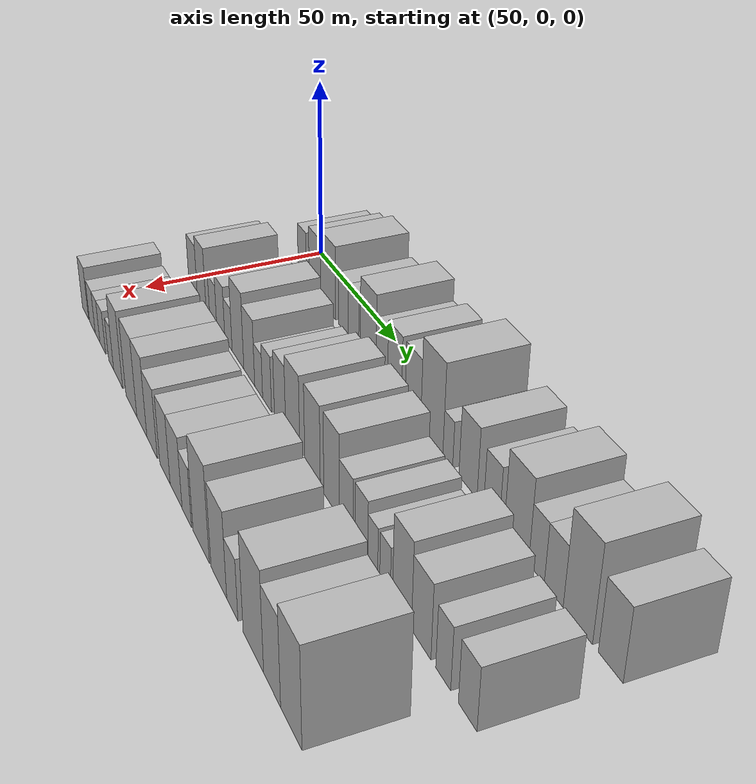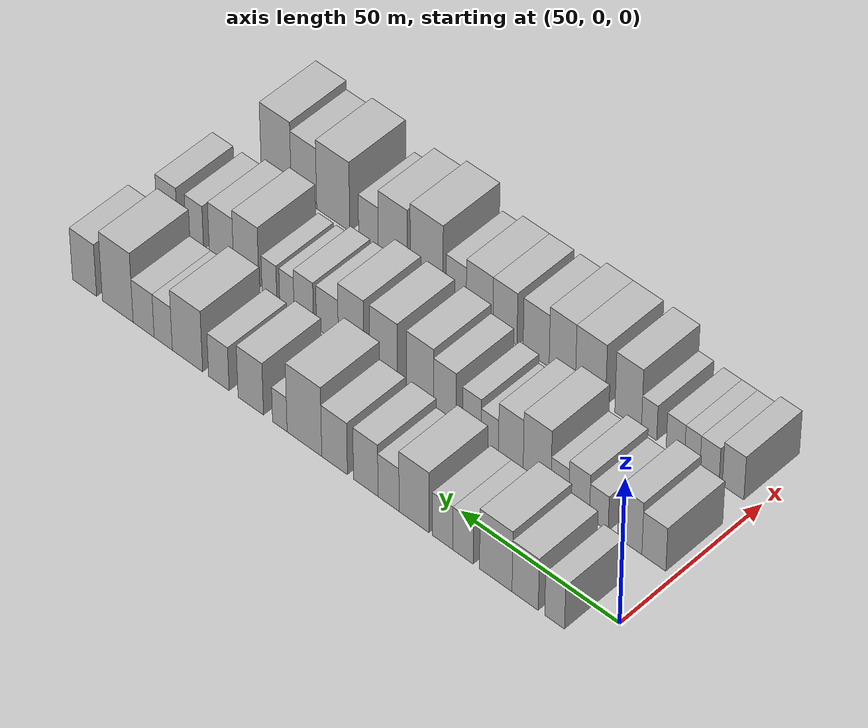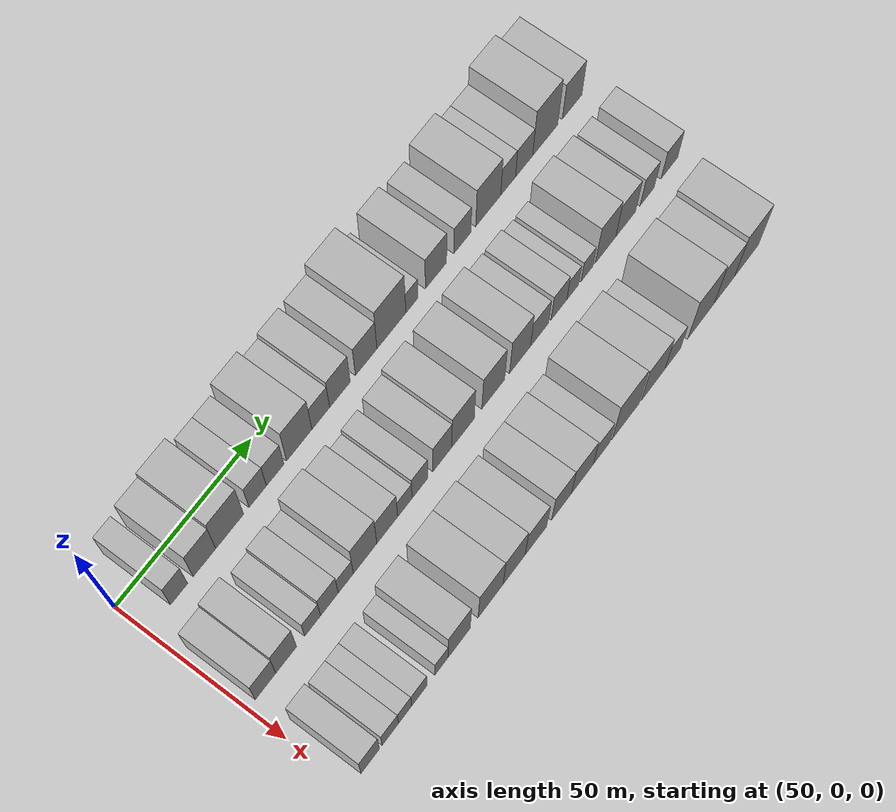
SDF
<sdf version="1.6">
 <world name="default">
  <model name="building_37">
   <static>1</static>
   <pose>50.0000 11.1801 0 0.000000 0.000000 0.000000</pose>
   <link name="link">
    <pose>0 0 7.50 0 0 0</pose>
    <collision name="collision"><geometry><box><size>20.0000 6.1879 15.0000</size></box></geometry></collision>
    <visual name="visual">
     <cast_shadows>0</cast_shadows>
     <geometry><box><size>20.0000 6.1879 15.0000</size></box></geometry>
     <material>
      <script>
       <uri>model://HANNAS_wall/materials/scripts</uri>
       <uri>model://HANNAS_wall/materials/textures</uri>
       <name>vrc/HANNAS_wall</name>
      </script>
     </material>
    </visual>
   </link>
  </model>
  <model name="building_38">
   <static>1</static>
   <pose>50.0000 20.3887 0 0.000000 0.000000 0.000000</pose>
   <link name="link">
    <pose>0 0 9.00 0 0 0</pose>
    <collision name="collision"><geometry><box><size>20.0000 8.2294 18.0000</size></box></geometry></collision>
    <visual name="visual">
     <cast_shadows>0</cast_shadows>
     <geometry><box><size>20.0000 8.2294 18.0000</size></box></geometry>
     <material>
      <script>
       <uri>model://HANNAS_wall/materials/scripts</uri>
       <uri>model://HANNAS_wall/materials/textures</uri>
       <name>vrc/HANNAS_wall</name>
      </script>
     </material>
    </visual>
   </link>
  </model>
  <model name="building_39">
   <static>1</static>
   <pose>50.0000 29.6329 0 0.000000 0.000000 0.000000</pose>
   <link name="link">
    <pose>0 0 10.50 0 0 0</pose>
    <collision name="collision"><geometry><box><size>20.0000 10.2591 21.0000</size></box></geometry></collision>
    <visual name="visual">
     <cast_shadows>0</cast_shadows>
     <geometry><box><size>20.0000 10.2591 21.0000</size></box></geometry>
     <material>
      <script>
       <uri>model://HANNAS_wall/materials/scripts</uri>
       <uri>model://HANNAS_wall/materials/textures</uri>
       <name>vrc/HANNAS_wall</name>
      </script>
     </material>
    </visual>
   </link>
  </model>
  <model name="building_40">
   <static>1</static>
   <pose>50.0000 40.0104 0 0.000000 0.000000 0.000000</pose>
   <link name="link">
    <pose>0 0 7.50 0 0 0</pose>
    <collision name="collision"><geometry><box><size>20.0000 6.4958 15.0000</size></box></geometry></collision>
    <visual name="visual">
     <cast_shadows>0</cast_shadows>
     <geometry><box><size>20.0000 6.4958 15.0000</size></box></geometry>
     <material>
      <script>
       <uri>model://HANNAS_wall/materials/scripts</uri>
       <uri>model://HANNAS_wall/materials/textures</uri>
       <name>vrc/HANNAS_wall</name>
      </script>
     </material>
    </visual>
   </link>
  </model>
  <model name="building_41">
   <static>1</static>
   <pose>50.0000 46.5417 0 0.000000 0.000000 0.000000</pose>
   <link name="link">
    <pose>0 0 7.50 0 0 0</pose>
    <collision name="collision"><geometry><box><size>20.0000 6.5669 15.0000</size></box></geometry></collision>
    <visual name="visual">
     <cast_shadows>0</cast_shadows>
     <geometry><box><size>20.0000 6.5669 15.0000</size></box></geometry>
     <material>
      <script>
       <uri>model://HANNAS_wall/materials/scripts</uri>
       <uri>model://HANNAS_wall/materials/textures</uri>
       <name>vrc/HANNAS_wall</name>
      </script>
     </material>
    </visual>
   </link>
  </model>
  <model name="building_42">
   <static>1</static>
   <pose>50.0000 55.6365 0 0.000000 0.000000 0.000000</pose>
   <link name="link">
    <pose>0 0 10.50 0 0 0</pose>
    <collision name="collision"><geometry><box><size>20.0000 9.6227 21.0000</size></box></geometry></collision>
    <visual name="visual">
     <cast_shadows>0</cast_shadows>
     <geometry><box><size>20.0000 9.6227 21.0000</size></box></geometry>
     <material>
      <script>
       <uri>model://HANNAS_wall/materials/scripts</uri>
       <uri>model://HANNAS_wall/materials/textures</uri>
       <name>vrc/HANNAS_wall</name>
      </script>
     </material>
    </visual>
   </link>
  </model>
  <model name="building_43">
   <static>1</static>
   <pose>50.0000 63.8564 0 0.000000 0.000000 0.000000</pose>
   <link name="link">
    <pose>0 0 7.50 0 0 0</pose>
    <collision name="collision"><geometry><box><size>20.0000 6.8171 15.0000</size></box></geometry></collision>
    <visual name="visual">
     <cast_shadows>0</cast_shadows>
     <geometry><box><size>20.0000 6.8171 15.0000</size></box></geometry>
     <material>
      <script>
       <uri>model://HANNAS_wall/materials/scripts</uri>
       <uri>model://HANNAS_wall/materials/textures</uri>
       <name>vrc/HANNAS_wall</name>
      </script>
     </material>
    </visual>
   </link>
  </model>
  <model name="building_44">
   <static>1</static>
   <pose>50.0000 71.2463 0 0.000000 0.000000 0.000000</pose>
   <link name="link">
    <pose>0 0 9.00 0 0 0</pose>
    <collision name="collision"><geometry><box><size>20.0000 7.9626 18.0000</size></box></geometry></collision>
    <visual name="visual">
     <cast_shadows>0</cast_shadows>
     <geometry><box><size>20.0000 7.9626 18.0000</size></box></geometry>
     <material>
      <script>
       <uri>model://HANNAS_wall/materials/scripts</uri>
       <uri>model://HANNAS_wall/materials/textures</uri>
       <name>vrc/HANNAS_wall</name>
      </script>
     </material>
    </visual>
   </link>
  </model>
  <model name="building_45">
   <static>1</static>
   <pose>50.0000 81.4256 0 0.000000 0.000000 0.000000</pose>
   <link name="link">
    <pose>0 0 9.00 0 0 0</pose>
    <collision name="collision"><geometry><box><size>20.0000 8.3960 18.0000</size></box></geometry></collision>
    <visual name="visual">
     <cast_shadows>0</cast_shadows>
     <geometry><box><size>20.0000 8.3960 18.0000</size></box></geometry>
     <material>
      <script>
       <uri>model://HANNAS_wall/materials/scripts</uri>
       <uri>model://HANNAS_wall/materials/textures</uri>
       <name>vrc/HANNAS_wall</name>
      </script>
     </material>
    </visual>
   </link>
  </model>
  <model name="building_46">
   <static>1</static>
   <pose>50.0000 91.3448 0 0.000000 0.000000 0.000000</pose>
   <link name="link">
    <pose>0 0 12.00 0 0 0</pose>
    <collision name="collision"><geometry><box><size>20.0000 11.4425 24.0000</size></box></geometry></collision>
    <visual name="visual">
     <cast_shadows>0</cast_shadows>
     <geometry><box><size>20.0000 11.4425 24.0000</size></box></geometry>
     <material>
      <script>
       <uri>model://HANNAS_wall/materials/scripts</uri>
       <uri>model://HANNAS_wall/materials/textures</uri>
       <name>vrc/HANNAS_wall</name>
      </script>
     </material>
    </visual>
   </link>
  </model>
  <model name="building_47">
   <static>1</static>
   <pose>50.0000 99.4876 0 0.000000 0.000000 0.000000</pose>
   <link name="link">
    <pose>0 0 6.00 0 0 0</pose>
    <collision name="collision"><geometry><box><size>20.0000 4.8430 12.0000</size></box></geometry></collision>
    <visual name="visual">
     <cast_shadows>0</cast_shadows>
     <geometry><box><size>20.0000 4.8430 12.0000</size></box></geometry>
     <material>
      <script>
       <uri>model://HANNAS_wall/materials/scripts</uri>
       <uri>model://HANNAS_wall/materials/textures</uri>
       <name>vrc/HANNAS_wall</name>
      </script>
     </material>
    </visual>
   </link>
  </model>
  <model name="building_48">
   <static>1</static>
   <pose>50.0000 109.1554 0 0.000000 0.000000 0.000000</pose>
   <link name="link">
    <pose>0 0 9.00 0 0 0</pose>
    <collision name="collision"><geometry><box><size>20.0000 8.4926 18.0000</size></box></geometry></collision>
    <visual name="visual">
     <cast_shadows>0</cast_shadows>
     <geometry><box><size>20.0000 8.4926 18.0000</size></box></geometry>
     <material>
      <script>
       <uri>model://HANNAS_wall/materials/scripts</uri>
       <uri>model://HANNAS_wall/materials/textures</uri>
       <name>vrc/HANNAS_wall</name>
      </script>
     </material>
    </visual>
   </link>
  </model>
  <model name="building_49">
   <static>1</static>
   <pose>50.0000 119.8619 0 0.000000 0.000000 0.000000</pose>
   <link name="link">
    <pose>0 0 7.50 0 0 0</pose>
    <collision name="collision"><geometry><box><size>20.0000 6.9204 15.0000</size></box></geometry></collision>
    <visual name="visual">
     <cast_shadows>0</cast_shadows>
     <geometry><box><size>20.0000 6.9204 15.0000</size></box></geometry>
     <material>
      <script>
       <uri>model://HANNAS_wall/materials/scripts</uri>
       <uri>model://HANNAS_wall/materials/textures</uri>
       <name>vrc/HANNAS_wall</name>
      </script>
     </material>
    </visual>
   </link>
  </model>
  <model name="building_50">
   <static>1</static>
   <pose>50.0000 130.4726 0 0.000000 0.000000 0.000000</pose>
   <link name="link">
    <pose>0 0 10.50 0 0 0</pose>
    <collision name="collision"><geometry><box><size>20.0000 10.3011 21.0000</size></box></geometry></collision>
    <visual name="visual">
     <cast_shadows>0</cast_shadows>
     <geometry><box><size>20.0000 10.3011 21.0000</size></box></geometry>
     <material>
      <script>
       <uri>model://HANNAS_wall/materials/scripts</uri>
       <uri>model://HANNAS_wall/materials/textures</uri>
       <name>vrc/HANNAS_wall</name>
      </script>
     </material>
    </visual>
   </link>
  </model>
  <model name="building_51">
   <static>1</static>
   <pose>50.0000 138.7285 0 0.000000 0.000000 0.000000</pose>
   <link name="link">
    <pose>0 0 7.50 0 0 0</pose>
    <collision name="collision"><geometry><box><size>20.0000 6.2106 15.0000</size></box></geometry></collision>
    <visual name="visual">
     <cast_shadows>0</cast_shadows>
     <geometry><box><size>20.0000 6.2106 15.0000</size></box></geometry>
     <material>
      <script>
       <uri>model://HANNAS_wall/materials/scripts</uri>
       <uri>model://HANNAS_wall/materials/textures</uri>
       <name>vrc/HANNAS_wall</name>
      </script>
     </material>
    </visual>
   </link>
  </model>
  <model name="building_52">
   <static>1</static>
   <pose>50.0000 145.4337 0 0.000000 0.000000 0.000000</pose>
   <link name="link">
    <pose>0 0 7.50 0 0 0</pose>
    <collision name="collision"><geometry><box><size>20.0000 7.1999 15.0000</size></box></geometry></collision>
    <visual name="visual">
     <cast_shadows>0</cast_shadows>
     <geometry><box><size>20.0000 7.1999 15.0000</size></box></geometry>
     <material>
      <script>
       <uri>model://HANNAS_wall/materials/scripts</uri>
       <uri>model://HANNAS_wall/materials/textures</uri>
       <name>vrc/HANNAS_wall</name>
      </script>
     </material>
    </visual>
   </link>
  </model>
  <model name="building_53">
   <static>1</static>
   <pose>50.0000 154.3404 0 0.000000 0.000000 0.000000</pose>
   <link name="link">
    <pose>0 0 12.00 0 0 0</pose>
    <collision name="collision"><geometry><box><size>20.0000 10.6135 24.0000</size></box></geometry></collision>
    <visual name="visual">
     <cast_shadows>0</cast_shadows>
     <geometry><box><size>20.0000 10.6135 24.0000</size></box></geometry>
     <material>
      <script>
       <uri>model://HANNAS_wall/materials/scripts</uri>
       <uri>model://HANNAS_wall/materials/textures</uri>
       <name>vrc/HANNAS_wall</name>
      </script>
     </material>
    </visual>
   </link>
  </model>
  <model name="building_54">
   <static>1</static>
   <pose>50.0000 165.8436 0 0.000000 0.000000 0.000000</pose>
   <link name="link">
    <pose>0 0 9.00 0 0 0</pose>
    <collision name="collision"><geometry><box><size>20.0000 8.3927 18.0000</size></box></geometry></collision>
    <visual name="visual">
     <cast_shadows>0</cast_shadows>
     <geometry><box><size>20.0000 8.3927 18.0000</size></box></geometry>
     <material>
      <script>
       <uri>model://HANNAS_wall/materials/scripts</uri>
       <uri>model://HANNAS_wall/materials/textures</uri>
       <name>vrc/HANNAS_wall</name>
      </script>
     </material>
    </visual>
   </link>
  </model>
  <model name="building_110">
   <static>1</static>
   <pose>79.0000 6.4554 0 0.000000 0.000000 0.000000</pose>
   <link name="link">
    <pose>0 0 7.50 0 0 0</pose>
    <collision name="collision"><geometry><box><size>20.0000 7.4567 15.0000</size></box></geometry></collision>
    <visual name="visual">
     <cast_shadows>0</cast_shadows>
     <geometry><box><size>20.0000 7.4567 15.0000</size></box></geometry>
     <material>
      <script>
       <uri>model://HANNAS_wall/materials/scripts</uri>
       <uri>model://HANNAS_wall/materials/textures</uri>
       <name>vrc/HANNAS_wall</name>
      </script>
     </material>
    </visual>
   </link>
  </model>
  <model name="building_111">
   <static>1</static>
   <pose>79.0000 13.9519 0 0.000000 0.000000 0.000000</pose>
   <link name="link">
    <pose>0 0 9.00 0 0 0</pose>
    <collision name="collision"><geometry><box><size>20.0000 7.5363 18.0000</size></box></geometry></collision>
    <visual name="visual">
     <cast_shadows>0</cast_shadows>
     <geometry><box><size>20.0000 7.5363 18.0000</size></box></geometry>
     <material>
      <script>
       <uri>model://HANNAS_wall/materials/scripts</uri>
       <uri>model://HANNAS_wall/materials/textures</uri>
       <name>vrc/HANNAS_wall</name>
      </script>
     </material>
    </visual>
   </link>
  </model>
  <model name="building_112">
   <static>1</static>
   <pose>79.0000 23.6591 0 0.000000 0.000000 0.000000</pose>
   <link name="link">
    <pose>0 0 6.00 0 0 0</pose>
    <collision name="collision"><geometry><box><size>20.0000 5.8781 12.0000</size></box></geometry></collision>
    <visual name="visual">
     <cast_shadows>0</cast_shadows>
     <geometry><box><size>20.0000 5.8781 12.0000</size></box></geometry>
     <material>
      <script>
       <uri>model://HANNAS_wall/materials/scripts</uri>
       <uri>model://HANNAS_wall/materials/textures</uri>
       <name>vrc/HANNAS_wall</name>
      </script>
     </material>
    </visual>
   </link>
  </model>
  <model name="building_113">
   <static>1</static>
   <pose>79.0000 29.8793 0 0.000000 0.000000 0.000000</pose>
   <link name="link">
    <pose>0 0 7.50 0 0 0</pose>
    <collision name="collision"><geometry><box><size>20.0000 6.5624 15.0000</size></box></geometry></collision>
    <visual name="visual">
     <cast_shadows>0</cast_shadows>
     <geometry><box><size>20.0000 6.5624 15.0000</size></box></geometry>
     <material>
      <script>
       <uri>model://HANNAS_wall/materials/scripts</uri>
       <uri>model://HANNAS_wall/materials/textures</uri>
       <name>vrc/HANNAS_wall</name>
      </script>
     </material>
    </visual>
   </link>
  </model>
  <model name="building_114">
   <static>1</static>
   <pose>79.0000 35.9953 0 0.000000 0.000000 0.000000</pose>
   <link name="link">
    <pose>0 0 6.00 0 0 0</pose>
    <collision name="collision"><geometry><box><size>20.0000 5.6694 12.0000</size></box></geometry></collision>
    <visual name="visual">
     <cast_shadows>0</cast_shadows>
     <geometry><box><size>20.0000 5.6694 12.0000</size></box></geometry>
     <material>
      <script>
       <uri>model://HANNAS_wall/materials/scripts</uri>
       <uri>model://HANNAS_wall/materials/textures</uri>
       <name>vrc/HANNAS_wall</name>
      </script>
     </material>
    </visual>
   </link>
  </model>
  <model name="building_115">
   <static>1</static>
   <pose>79.0000 43.2478 0 0.000000 0.000000 0.000000</pose>
   <link name="link">
    <pose>0 0 10.50 0 0 0</pose>
    <collision name="collision"><geometry><box><size>20.0000 8.8356 21.0000</size></box></geometry></collision>
    <visual name="visual">
     <cast_shadows>0</cast_shadows>
     <geometry><box><size>20.0000 8.8356 21.0000</size></box></geometry>
     <material>
      <script>
       <uri>model://HANNAS_wall/materials/scripts</uri>
       <uri>model://HANNAS_wall/materials/textures</uri>
       <name>vrc/HANNAS_wall</name>
      </script>
     </material>
    </visual>
   </link>
  </model>
  <model name="building_116">
   <static>1</static>
   <pose>79.0000 51.6295 0 0.000000 0.000000 0.000000</pose>
   <link name="link">
    <pose>0 0 9.00 0 0 0</pose>
    <collision name="collision"><geometry><box><size>20.0000 7.9278 18.0000</size></box></geometry></collision>
    <visual name="visual">
     <cast_shadows>0</cast_shadows>
     <geometry><box><size>20.0000 7.9278 18.0000</size></box></geometry>
     <material>
      <script>
       <uri>model://HANNAS_wall/materials/scripts</uri>
       <uri>model://HANNAS_wall/materials/textures</uri>
       <name>vrc/HANNAS_wall</name>
      </script>
     </material>
    </visual>
   </link>
  </model>
  <model name="building_117">
   <static>1</static>
   <pose>79.0000 58.3722 0 0.000000 0.000000 0.000000</pose>
   <link name="link">
    <pose>0 0 6.00 0 0 0</pose>
    <collision name="collision"><geometry><box><size>20.0000 5.5577 12.0000</size></box></geometry></collision>
    <visual name="visual">
     <cast_shadows>0</cast_shadows>
     <geometry><box><size>20.0000 5.5577 12.0000</size></box></geometry>
     <material>
      <script>
       <uri>model://HANNAS_wall/materials/scripts</uri>
       <uri>model://HANNAS_wall/materials/textures</uri>
       <name>vrc/HANNAS_wall</name>
      </script>
     </material>
    </visual>
   </link>
  </model>
  <model name="building_118">
   <static>1</static>
   <pose>79.0000 64.1991 0 0.000000 0.000000 0.000000</pose>
   <link name="link">
    <pose>0 0 7.50 0 0 0</pose>
    <collision name="collision"><geometry><box><size>20.0000 6.0961 15.0000</size></box></geometry></collision>
    <visual name="visual">
     <cast_shadows>0</cast_shadows>
     <geometry><box><size>20.0000 6.0961 15.0000</size></box></geometry>
     <material>
      <script>
       <uri>model://HANNAS_wall/materials/scripts</uri>
       <uri>model://HANNAS_wall/materials/textures</uri>
       <name>vrc/HANNAS_wall</name>
      </script>
     </material>
    </visual>
   </link>
  </model>
  <model name="building_119">
   <static>1</static>
   <pose>79.0000 72.9275 0 0.000000 0.000000 0.000000</pose>
   <link name="link">
    <pose>0 0 9.00 0 0 0</pose>
    <collision name="collision"><geometry><box><size>20.0000 7.3608 18.0000</size></box></geometry></collision>
    <visual name="visual">
     <cast_shadows>0</cast_shadows>
     <geometry><box><size>20.0000 7.3608 18.0000</size></box></geometry>
     <material>
      <script>
       <uri>model://HANNAS_wall/materials/scripts</uri>
       <uri>model://HANNAS_wall/materials/textures</uri>
       <name>vrc/HANNAS_wall</name>
      </script>
     </material>
    </visual>
   </link>
  </model>
  <model name="building_120">
   <static>1</static>
   <pose>79.0000 81.0426 0 0.000000 0.000000 0.000000</pose>
   <link name="link">
    <pose>0 0 10.50 0 0 0</pose>
    <collision name="collision"><geometry><box><size>20.0000 8.8695 21.0000</size></box></geometry></collision>
    <visual name="visual">
     <cast_shadows>0</cast_shadows>
     <geometry><box><size>20.0000 8.8695 21.0000</size></box></geometry>
     <material>
      <script>
       <uri>model://HANNAS_wall/materials/scripts</uri>
       <uri>model://HANNAS_wall/materials/textures</uri>
       <name>vrc/HANNAS_wall</name>
      </script>
     </material>
    </visual>
   </link>
  </model>
  <model name="building_121">
   <static>1</static>
   <pose>79.0000 93.0280 0 0.000000 0.000000 0.000000</pose>
   <link name="link">
    <pose>0 0 10.50 0 0 0</pose>
    <collision name="collision"><geometry><box><size>20.0000 9.1012 21.0000</size></box></geometry></collision>
    <visual name="visual">
     <cast_shadows>0</cast_shadows>
     <geometry><box><size>20.0000 9.1012 21.0000</size></box></geometry>
     <material>
      <script>
       <uri>model://HANNAS_wall/materials/scripts</uri>
       <uri>model://HANNAS_wall/materials/textures</uri>
       <name>vrc/HANNAS_wall</name>
      </script>
     </material>
    </visual>
   </link>
  </model>
  <model name="building_122">
   <static>1</static>
   <pose>79.0000 103.8393 0 0.000000 0.000000 0.000000</pose>
   <link name="link">
    <pose>0 0 10.50 0 0 0</pose>
    <collision name="collision"><geometry><box><size>20.0000 8.5215 21.0000</size></box></geometry></collision>
    <visual name="visual">
     <cast_shadows>0</cast_shadows>
     <geometry><box><size>20.0000 8.5215 21.0000</size></box></geometry>
     <material>
      <script>
       <uri>model://HANNAS_wall/materials/scripts</uri>
       <uri>model://HANNAS_wall/materials/textures</uri>
       <name>vrc/HANNAS_wall</name>
      </script>
     </material>
    </visual>
   </link>
  </model>
  <model name="building_123">
   <static>1</static>
   <pose>79.0000 111.7566 0 0.000000 0.000000 0.000000</pose>
   <link name="link">
    <pose>0 0 7.50 0 0 0</pose>
    <collision name="collision"><geometry><box><size>20.0000 7.3131 15.0000</size></box></geometry></collision>
    <visual name="visual">
     <cast_shadows>0</cast_shadows>
     <geometry><box><size>20.0000 7.3131 15.0000</size></box></geometry>
     <material>
      <script>
       <uri>model://HANNAS_wall/materials/scripts</uri>
       <uri>model://HANNAS_wall/materials/textures</uri>
       <name>vrc/HANNAS_wall</name>
      </script>
     </material>
    </visual>
   </link>
  </model>
  <model name="building_124">
   <static>1</static>
   <pose>79.0000 119.6957 0 0.000000 0.000000 0.000000</pose>
   <link name="link">
    <pose>0 0 7.50 0 0 0</pose>
    <collision name="collision"><geometry><box><size>20.0000 6.5651 15.0000</size></box></geometry></collision>
    <visual name="visual">
     <cast_shadows>0</cast_shadows>
     <geometry><box><size>20.0000 6.5651 15.0000</size></box></geometry>
     <material>
      <script>
       <uri>model://HANNAS_wall/materials/scripts</uri>
       <uri>model://HANNAS_wall/materials/textures</uri>
       <name>vrc/HANNAS_wall</name>
      </script>
     </material>
    </visual>
   </link>
  </model>
  <model name="building_125">
   <static>1</static>
   <pose>79.0000 125.4051 0 0.000000 0.000000 0.000000</pose>
   <link name="link">
    <pose>0 0 6.00 0 0 0</pose>
    <collision name="collision"><geometry><box><size>20.0000 4.8538 12.0000</size></box></geometry></collision>
    <visual name="visual">
     <cast_shadows>0</cast_shadows>
     <geometry><box><size>20.0000 4.8538 12.0000</size></box></geometry>
     <material>
      <script>
       <uri>model://HANNAS_wall/materials/scripts</uri>
       <uri>model://HANNAS_wall/materials/textures</uri>
       <name>vrc/HANNAS_wall</name>
      </script>
     </material>
    </visual>
   </link>
  </model>
  <model name="building_126">
   <static>1</static>
   <pose>79.0000 131.3439 0 0.000000 0.000000 0.000000</pose>
   <link name="link">
    <pose>0 0 6.00 0 0 0</pose>
    <collision name="collision"><geometry><box><size>20.0000 5.0237 12.0000</size></box></geometry></collision>
    <visual name="visual">
     <cast_shadows>0</cast_shadows>
     <geometry><box><size>20.0000 5.0237 12.0000</size></box></geometry>
     <material>
      <script>
       <uri>model://HANNAS_wall/materials/scripts</uri>
       <uri>model://HANNAS_wall/materials/textures</uri>
       <name>vrc/HANNAS_wall</name>
      </script>
     </material>
    </visual>
   </link>
  </model>
  <model name="building_127">
   <static>1</static>
   <pose>79.0000 139.1733 0 0.000000 0.000000 0.000000</pose>
   <link name="link">
    <pose>0 0 10.50 0 0 0</pose>
    <collision name="collision"><geometry><box><size>20.0000 8.6352 21.0000</size></box></geometry></collision>
    <visual name="visual">
     <cast_shadows>0</cast_shadows>
     <geometry><box><size>20.0000 8.6352 21.0000</size></box></geometry>
     <material>
      <script>
       <uri>model://HANNAS_wall/materials/scripts</uri>
       <uri>model://HANNAS_wall/materials/textures</uri>
       <name>vrc/HANNAS_wall</name>
      </script>
     </material>
    </visual>
   </link>
  </model>
  <model name="building_128">
   <static>1</static>
   <pose>79.0000 147.6832 0 0.000000 0.000000 0.000000</pose>
   <link name="link">
    <pose>0 0 9.00 0 0 0</pose>
    <collision name="collision"><geometry><box><size>20.0000 8.3845 18.0000</size></box></geometry></collision>
    <visual name="visual">
     <cast_shadows>0</cast_shadows>
     <geometry><box><size>20.0000 8.3845 18.0000</size></box></geometry>
     <material>
      <script>
       <uri>model://HANNAS_wall/materials/scripts</uri>
       <uri>model://HANNAS_wall/materials/textures</uri>
       <name>vrc/HANNAS_wall</name>
      </script>
     </material>
    </visual>
   </link>
  </model>
  <model name="building_129">
   <static>1</static>
   <pose>79.0000 156.9123 0 0.000000 0.000000 0.000000</pose>
   <link name="link">
    <pose>0 0 7.50 0 0 0</pose>
    <collision name="collision"><geometry><box><size>20.0000 6.0739 15.0000</size></box></geometry></collision>
    <visual name="visual">
     <cast_shadows>0</cast_shadows>
     <geometry><box><size>20.0000 6.0739 15.0000</size></box></geometry>
     <material>
      <script>
       <uri>model://HANNAS_wall/materials/scripts</uri>
       <uri>model://HANNAS_wall/materials/textures</uri>
       <name>vrc/HANNAS_wall</name>
      </script>
     </material>
    </visual>
   </link>
  </model>
  <model name="building_130">
   <static>1</static>
   <pose>79.0000 166.5161 0 0.000000 0.000000 0.000000</pose>
   <link name="link">
    <pose>0 0 7.50 0 0 0</pose>
    <collision name="collision"><geometry><box><size>20.0000 7.1336 15.0000</size></box></geometry></collision>
    <visual name="visual">
     <cast_shadows>0</cast_shadows>
     <geometry><box><size>20.0000 7.1336 15.0000</size></box></geometry>
     <material>
      <script>
       <uri>model://HANNAS_wall/materials/scripts</uri>
       <uri>model://HANNAS_wall/materials/textures</uri>
       <name>vrc/HANNAS_wall</name>
      </script>
     </material>
    </visual>
   </link>
  </model>
  <model name="building_188">
   <static>1</static>
   <pose>108.0000 7.3516 0 0.000000 0.000000 0.000000</pose>
   <link name="link">
    <pose>0 0 7.50 0 0 0</pose>
    <collision name="collision"><geometry><box><size>20.0000 6.7166 15.0000</size></box></geometry></collision>
    <visual name="visual">
     <cast_shadows>0</cast_shadows>
     <geometry><box><size>20.0000 6.7166 15.0000</size></box></geometry>
     <material>
      <script>
       <uri>model://HANNAS_wall/materials/scripts</uri>
       <uri>model://HANNAS_wall/materials/textures</uri>
       <name>vrc/HANNAS_wall</name>
      </script>
     </material>
    </visual>
   </link>
  </model>
  <model name="building_189">
   <static>1</static>
   <pose>108.0000 14.7060 0 0.000000 0.000000 0.000000</pose>
   <link name="link">
    <pose>0 0 6.00 0 0 0</pose>
    <collision name="collision"><geometry><box><size>20.0000 5.9921 12.0000</size></box></geometry></collision>
    <visual name="visual">
     <cast_shadows>0</cast_shadows>
     <geometry><box><size>20.0000 5.9921 12.0000</size></box></geometry>
     <material>
      <script>
       <uri>model://HANNAS_wall/materials/scripts</uri>
       <uri>model://HANNAS_wall/materials/textures</uri>
       <name>vrc/HANNAS_wall</name>
      </script>
     </material>
    </visual>
   </link>
  </model>
  <model name="building_190">
   <static>1</static>
   <pose>108.0000 20.1368 0 0.000000 0.000000 0.000000</pose>
   <link name="link">
    <pose>0 0 6.00 0 0 0</pose>
    <collision name="collision"><geometry><box><size>20.0000 4.8696 12.0000</size></box></geometry></collision>
    <visual name="visual">
     <cast_shadows>0</cast_shadows>
     <geometry><box><size>20.0000 4.8696 12.0000</size></box></geometry>
     <material>
      <script>
       <uri>model://HANNAS_wall/materials/scripts</uri>
       <uri>model://HANNAS_wall/materials/textures</uri>
       <name>vrc/HANNAS_wall</name>
      </script>
     </material>
    </visual>
   </link>
  </model>
  <model name="building_191">
   <static>1</static>
   <pose>108.0000 25.4579 0 0.000000 0.000000 0.000000</pose>
   <link name="link">
    <pose>0 0 6.00 0 0 0</pose>
    <collision name="collision"><geometry><box><size>20.0000 5.7726 12.0000</size></box></geometry></collision>
    <visual name="visual">
     <cast_shadows>0</cast_shadows>
     <geometry><box><size>20.0000 5.7726 12.0000</size></box></geometry>
     <material>
      <script>
       <uri>model://HANNAS_wall/materials/scripts</uri>
       <uri>model://HANNAS_wall/materials/textures</uri>
       <name>vrc/HANNAS_wall</name>
      </script>
     </material>
    </visual>
   </link>
  </model>
  <model name="building_192">
   <static>1</static>
   <pose>108.0000 33.7710 0 0.000000 0.000000 0.000000</pose>
   <link name="link">
    <pose>0 0 6.00 0 0 0</pose>
    <collision name="collision"><geometry><box><size>20.0000 4.8534 12.0000</size></box></geometry></collision>
    <visual name="visual">
     <cast_shadows>0</cast_shadows>
     <geometry><box><size>20.0000 4.8534 12.0000</size></box></geometry>
     <material>
      <script>
       <uri>model://HANNAS_wall/materials/scripts</uri>
       <uri>model://HANNAS_wall/materials/textures</uri>
       <name>vrc/HANNAS_wall</name>
      </script>
     </material>
    </visual>
   </link>
  </model>
  <model name="building_193">
   <static>1</static>
   <pose>108.0000 40.4396 0 0.000000 0.000000 0.000000</pose>
   <link name="link">
    <pose>0 0 10.50 0 0 0</pose>
    <collision name="collision"><geometry><box><size>20.0000 8.4839 21.0000</size></box></geometry></collision>
    <visual name="visual">
     <cast_shadows>0</cast_shadows>
     <geometry><box><size>20.0000 8.4839 21.0000</size></box></geometry>
     <material>
      <script>
       <uri>model://HANNAS_wall/materials/scripts</uri>
       <uri>model://HANNAS_wall/materials/textures</uri>
       <name>vrc/HANNAS_wall</name>
      </script>
     </material>
    </visual>
   </link>
  </model>
  <model name="building_194">
   <static>1</static>
   <pose>108.0000 52.5174 0 0.000000 0.000000 0.000000</pose>
   <link name="link">
    <pose>0 0 10.50 0 0 0</pose>
    <collision name="collision"><geometry><box><size>20.0000 9.6716 21.0000</size></box></geometry></collision>
    <visual name="visual">
     <cast_shadows>0</cast_shadows>
     <geometry><box><size>20.0000 9.6716 21.0000</size></box></geometry>
     <material>
      <script>
       <uri>model://HANNAS_wall/materials/scripts</uri>
       <uri>model://HANNAS_wall/materials/textures</uri>
       <name>vrc/HANNAS_wall</name>
      </script>
     </material>
    </visual>
   </link>
  </model>
  <model name="building_195">
   <static>1</static>
   <pose>108.0000 61.6092 0 0.000000 0.000000 0.000000</pose>
   <link name="link">
    <pose>0 0 10.50 0 0 0</pose>
    <collision name="collision"><geometry><box><size>20.0000 8.5120 21.0000</size></box></geometry></collision>
    <visual name="visual">
     <cast_shadows>0</cast_shadows>
     <geometry><box><size>20.0000 8.5120 21.0000</size></box></geometry>
     <material>
      <script>
       <uri>model://HANNAS_wall/materials/scripts</uri>
       <uri>model://HANNAS_wall/materials/textures</uri>
       <name>vrc/HANNAS_wall</name>
      </script>
     </material>
    </visual>
   </link>
  </model>
  <model name="building_196">
   <static>1</static>
   <pose>108.0000 70.0912 0 0.000000 0.000000 0.000000</pose>
   <link name="link">
    <pose>0 0 9.00 0 0 0</pose>
    <collision name="collision"><geometry><box><size>20.0000 8.4521 18.0000</size></box></geometry></collision>
    <visual name="visual">
     <cast_shadows>0</cast_shadows>
     <geometry><box><size>20.0000 8.4521 18.0000</size></box></geometry>
     <material>
      <script>
       <uri>model://HANNAS_wall/materials/scripts</uri>
       <uri>model://HANNAS_wall/materials/textures</uri>
       <name>vrc/HANNAS_wall</name>
      </script>
     </material>
    </visual>
   </link>
  </model>
  <model name="building_197">
   <static>1</static>
   <pose>108.0000 80.2825 0 0.000000 0.000000 0.000000</pose>
   <link name="link">
    <pose>0 0 9.00 0 0 0</pose>
    <collision name="collision"><geometry><box><size>20.0000 7.9305 18.0000</size></box></geometry></collision>
    <visual name="visual">
     <cast_shadows>0</cast_shadows>
     <geometry><box><size>20.0000 7.9305 18.0000</size></box></geometry>
     <material>
      <script>
       <uri>model://HANNAS_wall/materials/scripts</uri>
       <uri>model://HANNAS_wall/materials/textures</uri>
       <name>vrc/HANNAS_wall</name>
      </script>
     </material>
    </visual>
   </link>
  </model>
  <model name="building_198">
   <static>1</static>
   <pose>108.0000 88.6325 0 0.000000 0.000000 0.000000</pose>
   <link name="link">
    <pose>0 0 9.00 0 0 0</pose>
    <collision name="collision"><geometry><box><size>20.0000 8.7696 18.0000</size></box></geometry></collision>
    <visual name="visual">
     <cast_shadows>0</cast_shadows>
     <geometry><box><size>20.0000 8.7696 18.0000</size></box></geometry>
     <material>
      <script>
       <uri>model://HANNAS_wall/materials/scripts</uri>
       <uri>model://HANNAS_wall/materials/textures</uri>
       <name>vrc/HANNAS_wall</name>
      </script>
     </material>
    </visual>
   </link>
  </model>
  <model name="building_199">
   <static>1</static>
   <pose>108.0000 96.3596 0 0.000000 0.000000 0.000000</pose>
   <link name="link">
    <pose>0 0 7.50 0 0 0</pose>
    <collision name="collision"><geometry><box><size>20.0000 6.6846 15.0000</size></box></geometry></collision>
    <visual name="visual">
     <cast_shadows>0</cast_shadows>
     <geometry><box><size>20.0000 6.6846 15.0000</size></box></geometry>
     <material>
      <script>
       <uri>model://HANNAS_wall/materials/scripts</uri>
       <uri>model://HANNAS_wall/materials/textures</uri>
       <name>vrc/HANNAS_wall</name>
      </script>
     </material>
    </visual>
   </link>
  </model>
  <model name="building_200">
   <static>1</static>
   <pose>108.0000 106.1806 0 0.000000 0.000000 0.000000</pose>
   <link name="link">
    <pose>0 0 12.00 0 0 0</pose>
    <collision name="collision"><geometry><box><size>20.0000 10.9574 24.0000</size></box></geometry></collision>
    <visual name="visual">
     <cast_shadows>0</cast_shadows>
     <geometry><box><size>20.0000 10.9574 24.0000</size></box></geometry>
     <material>
      <script>
       <uri>model://HANNAS_wall/materials/scripts</uri>
       <uri>model://HANNAS_wall/materials/textures</uri>
       <name>vrc/HANNAS_wall</name>
      </script>
     </material>
    </visual>
   </link>
  </model>
  <model name="building_201">
   <static>1</static>
   <pose>108.0000 117.5495 0 0.000000 0.000000 0.000000</pose>
   <link name="link">
    <pose>0 0 10.50 0 0 0</pose>
    <collision name="collision"><geometry><box><size>20.0000 9.7804 21.0000</size></box></geometry></collision>
    <visual name="visual">
     <cast_shadows>0</cast_shadows>
     <geometry><box><size>20.0000 9.7804 21.0000</size></box></geometry>
     <material>
      <script>
       <uri>model://HANNAS_wall/materials/scripts</uri>
       <uri>model://HANNAS_wall/materials/textures</uri>
       <name>vrc/HANNAS_wall</name>
      </script>
     </material>
    </visual>
   </link>
  </model>
  <model name="building_202">
   <static>1</static>
   <pose>108.0000 125.7709 0 0.000000 0.000000 0.000000</pose>
   <link name="link">
    <pose>0 0 7.50 0 0 0</pose>
    <collision name="collision"><geometry><box><size>20.0000 6.6623 15.0000</size></box></geometry></collision>
    <visual name="visual">
     <cast_shadows>0</cast_shadows>
     <geometry><box><size>20.0000 6.6623 15.0000</size></box></geometry>
     <material>
      <script>
       <uri>model://HANNAS_wall/materials/scripts</uri>
       <uri>model://HANNAS_wall/materials/textures</uri>
       <name>vrc/HANNAS_wall</name>
      </script>
     </material>
    </visual>
   </link>
  </model>
  <model name="building_203">
   <static>1</static>
   <pose>108.0000 137.7520 0 0.000000 0.000000 0.000000</pose>
   <link name="link">
    <pose>0 0 12.00 0 0 0</pose>
    <collision name="collision"><geometry><box><size>20.0000 11.2999 24.0000</size></box></geometry></collision>
    <visual name="visual">
     <cast_shadows>0</cast_shadows>
     <geometry><box><size>20.0000 11.2999 24.0000</size></box></geometry>
     <material>
      <script>
       <uri>model://HANNAS_wall/materials/scripts</uri>
       <uri>model://HANNAS_wall/materials/textures</uri>
       <name>vrc/HANNAS_wall</name>
      </script>
     </material>
    </visual>
   </link>
  </model>
  <model name="building_204">
   <static>1</static>
   <pose>108.0000 147.7930 0 0.000000 0.000000 0.000000</pose>
   <link name="link">
    <pose>0 0 10.50 0 0 0</pose>
    <collision name="collision"><geometry><box><size>20.0000 8.7821 21.0000</size></box></geometry></collision>
    <visual name="visual">
     <cast_shadows>0</cast_shadows>
     <geometry><box><size>20.0000 8.7821 21.0000</size></box></geometry>
     <material>
      <script>
       <uri>model://HANNAS_wall/materials/scripts</uri>
       <uri>model://HANNAS_wall/materials/textures</uri>
       <name>vrc/HANNAS_wall</name>
      </script>
     </material>
    </visual>
   </link>
  </model>
  <model name="building_205">
   <static>1</static>
   <pose>108.0000 157.3714 0 0.000000 0.000000 0.000000</pose>
   <link name="link">
    <pose>0 0 12.00 0 0 0</pose>
    <collision name="collision"><geometry><box><size>20.0000 10.3748 24.0000</size></box></geometry></collision>
    <visual name="visual">
     <cast_shadows>0</cast_shadows>
     <geometry><box><size>20.0000 10.3748 24.0000</size></box></geometry>
     <material>
      <script>
       <uri>model://HANNAS_wall/materials/scripts</uri>
       <uri>model://HANNAS_wall/materials/textures</uri>
       <name>vrc/HANNAS_wall</name>
      </script>
     </material>
    </visual>
   </link>
  </model>
 </world>
</sdf>
